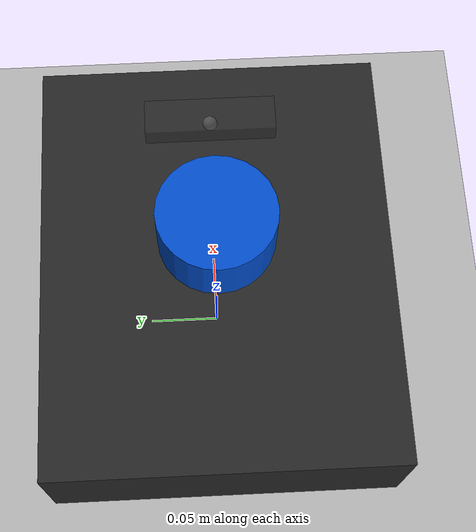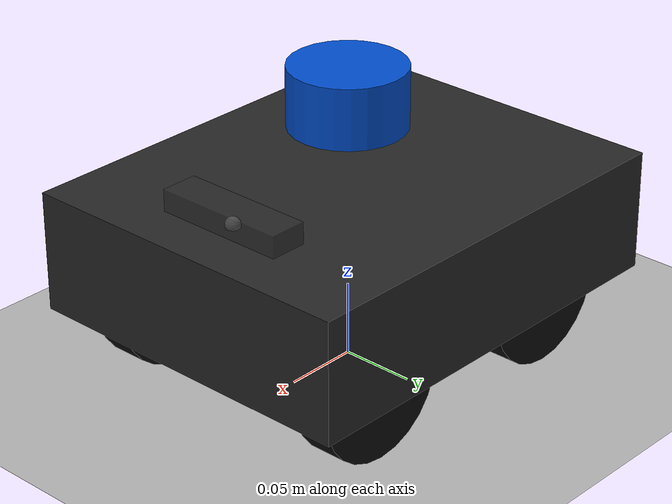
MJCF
<mujoco model="yahboom_m3pro">

  <compiler angle="radian" meshdir="." autolimits="true"/>

  <option timestep="0.004" gravity="0 0 -9.81"
          integrator="implicitfast" iterations="50" solver="Newton"/>

  <!-- ── Class defaults ─────────────────────────────────────────────────────── -->
  <default>
    <joint damping="0.5" frictionloss="0.02"/>
    <!-- Default geom: standard floor/chassis friction -->
    <geom friction="0.8 0.005 0.0001" condim="3" contype="1" conaffinity="1"/>
  </default>

  <!-- ── Assets ─────────────────────────────────────────────────────────────── -->
  <asset>
    <texture name="floor_tex" type="2d" builtin="checker"
             width="512" height="512" rgb1="0.60 0.60 0.60" rgb2="0.80 0.80 0.80"/>
    <material name="floor_mat"   texture="floor_tex" texrepeat="10 10" reflectance="0.1"/>
    <material name="chassis_mat" rgba="0.15 0.15 0.15 1.0"/>
    <material name="wheel_mat"   rgba="0.05 0.05 0.05 1.0"/>
    <material name="lidar_mat"   rgba="0.00 0.30 0.80 1.0"/>
    <material name="sensor_mat"  rgba="0.20 0.20 0.20 0.6"/>
  </asset>

  <!-- ── World ──────────────────────────────────────────────────────────────── -->
  <worldbody>

    <geom name="floor" type="plane" size="10 10 0.1"
          material="floor_mat" contype="1" conaffinity="1"/>

    <!-- Robot spawns with base_link 0.048 m above floor (= wheel radius) -->
    <body name="base_link" pos="0 0 0.048">
      <freejoint name="root"/>

      <inertial mass="1.800" pos="0 0 0.040"
                diaginertia="0.009 0.014 0.021"/>

      <!-- Chassis box — MuJoCo size = half-extents (0.290/2, 0.235/2, 0.080/2) -->
      <geom name="chassis" type="box" size="0.145 0.1175 0.040"
            pos="0 0 0.040" material="chassis_mat"/>

      <!-- ── Sensor sites ─────────────────────────────────────────────────── -->

      <!-- IMU: mounted on main board, approximate centre of chassis -->
      <site name="imu" pos="0 0 0.040" size="0.005"/>

      <!-- LiDAR scan plane: 0.160 m from ground → 0.160 - 0.048 = 0.112 m above base_link -->
      <site name="lidar" pos="0 0 0.112" size="0.010"/>

      <!-- Camera lens centre: 0.130 m from ground → 0.082 m above base_link, 0.100 m forward -->
      <site name="camera" pos="0.100 0 0.082" size="0.005"/>

      <!-- ── Visual-only geoms (non-colliding, informational) ───────────────── -->

      <!-- LiDAR body: radius 0.038 m, half-length 0.020 m (full length 0.040 m)
           Centre at lidar_site + half-length: 0.112 + 0.020 = 0.132 m -->
      <geom name="lidar_body" type="cylinder" size="0.038 0.020"
            pos="0 0 0.132" material="lidar_mat"
            contype="0" conaffinity="0"/>

      <!-- Camera module: 0.025 × 0.090 × 0.025 m (half-extents) -->
      <geom name="camera_body" type="box" size="0.0125 0.045 0.0125"
            pos="0.100 0 0.082" material="sensor_mat"
            contype="0" conaffinity="0"/>

      <!-- ── Front-left mecanum wheel ────────────────────────────────────── -->
      <!-- pos = (+lx=+0.0775, +ly=+0.085, 0) in base_link frame -->
      <body name="fl_wheel" pos="0.0775 0.085 0">

        <!-- hinge joint about Y-axis (wheel spin = forward/backward motion)
             damping=0.1 matches URDF dynamics; higher than X3 for stability -->
        <joint name="fl_wheel_joint" type="hinge"
               axis="0 1 0" limited="false" damping="0.1"/>

        <inertial mass="0.150" pos="0 0 0"
                  diaginertia="0.000094 0.000173 0.000094"/>

        <geom name="fl_wheel_geom" type="cylinder" size="0.048 0.0125"
              euler="1.5708 0 0"
              friction="0.8 0.1 0.001" condim="3"
              material="wheel_mat"/>

      </body> <!-- fl_wheel -->

      <!-- ── Front-right mecanum wheel ───────────────────────────────────── -->
      <body name="fr_wheel" pos="0.0775 -0.085 0">
        <joint name="fr_wheel_joint" type="hinge"
               axis="0 1 0" limited="false" damping="0.1"/>
        <inertial mass="0.150" pos="0 0 0"
                  diaginertia="0.000094 0.000173 0.000094"/>
        <geom name="fr_wheel_geom" type="cylinder" size="0.048 0.0125"
              euler="1.5708 0 0"
              friction="0.8 0.1 0.001" condim="3"
              material="wheel_mat"/>
      </body>

      <!-- ── Rear-left mecanum wheel ─────────────────────────────────────── -->
      <body name="rl_wheel" pos="-0.0775 0.085 0">
        <joint name="rl_wheel_joint" type="hinge"
               axis="0 1 0" limited="false" damping="0.1"/>
        <inertial mass="0.150" pos="0 0 0"
                  diaginertia="0.000094 0.000173 0.000094"/>
        <geom name="rl_wheel_geom" type="cylinder" size="0.048 0.0125"
              euler="1.5708 0 0"
              friction="0.8 0.1 0.001" condim="3"
              material="wheel_mat"/>
      </body>

      <!-- ── Rear-right mecanum wheel ────────────────────────────────────── -->
      <body name="rr_wheel" pos="-0.0775 -0.085 0">
        <joint name="rr_wheel_joint" type="hinge"
               axis="0 1 0" limited="false" damping="0.1"/>
        <inertial mass="0.150" pos="0 0 0"
                  diaginertia="0.000094 0.000173 0.000094"/>
        <geom name="rr_wheel_geom" type="cylinder" size="0.048 0.0125"
              euler="1.5708 0 0"
              friction="0.8 0.1 0.001" condim="3"
              material="wheel_mat"/>
      </body>

    </body> <!-- base_link -->

  </worldbody>

  <!-- ── Actuators ──────────────────────────────────────────────────────────── -->
  <actuator>
    <velocity name="fl_drive" joint="fl_wheel_joint"
              kv="0.5" ctrlrange="-20 20" ctrllimited="true"/>
    <velocity name="fr_drive" joint="fr_wheel_joint"
              kv="0.5" ctrlrange="-20 20" ctrllimited="true"/>
    <velocity name="rl_drive" joint="rl_wheel_joint"
              kv="0.5" ctrlrange="-20 20" ctrllimited="true"/>
    <velocity name="rr_drive" joint="rr_wheel_joint"
              kv="0.5" ctrlrange="-20 20" ctrllimited="true"/>
  </actuator>

  <!-- ── Sensors ────────────────────────────────────────────────────────────── -->
  <sensor>
    <!-- IMU (matches /imu/data topic fields in obs_adapter_m3pro.py) -->
    <accelerometer name="accel"       site="imu"/>
    <gyro          name="gyro"        site="imu"/>
    <framequat     name="orientation" objtype="site" objname="imu"/>

    <!-- Wheel encoders (match /joint_states topic; fl/fr/rl/rr order) -->
    <jointpos name="fl_wheel_pos" joint="fl_wheel_joint"/>
    <jointpos name="fr_wheel_pos" joint="fr_wheel_joint"/>
    <jointpos name="rl_wheel_pos" joint="rl_wheel_joint"/>
    <jointpos name="rr_wheel_pos" joint="rr_wheel_joint"/>

    <jointvel name="fl_wheel_vel" joint="fl_wheel_joint"/>
    <jointvel name="fr_wheel_vel" joint="fr_wheel_joint"/>
    <jointvel name="rl_wheel_vel" joint="rl_wheel_joint"/>
    <jointvel name="rr_wheel_vel" joint="rr_wheel_joint"/>
  </sensor>

</mujoco>
